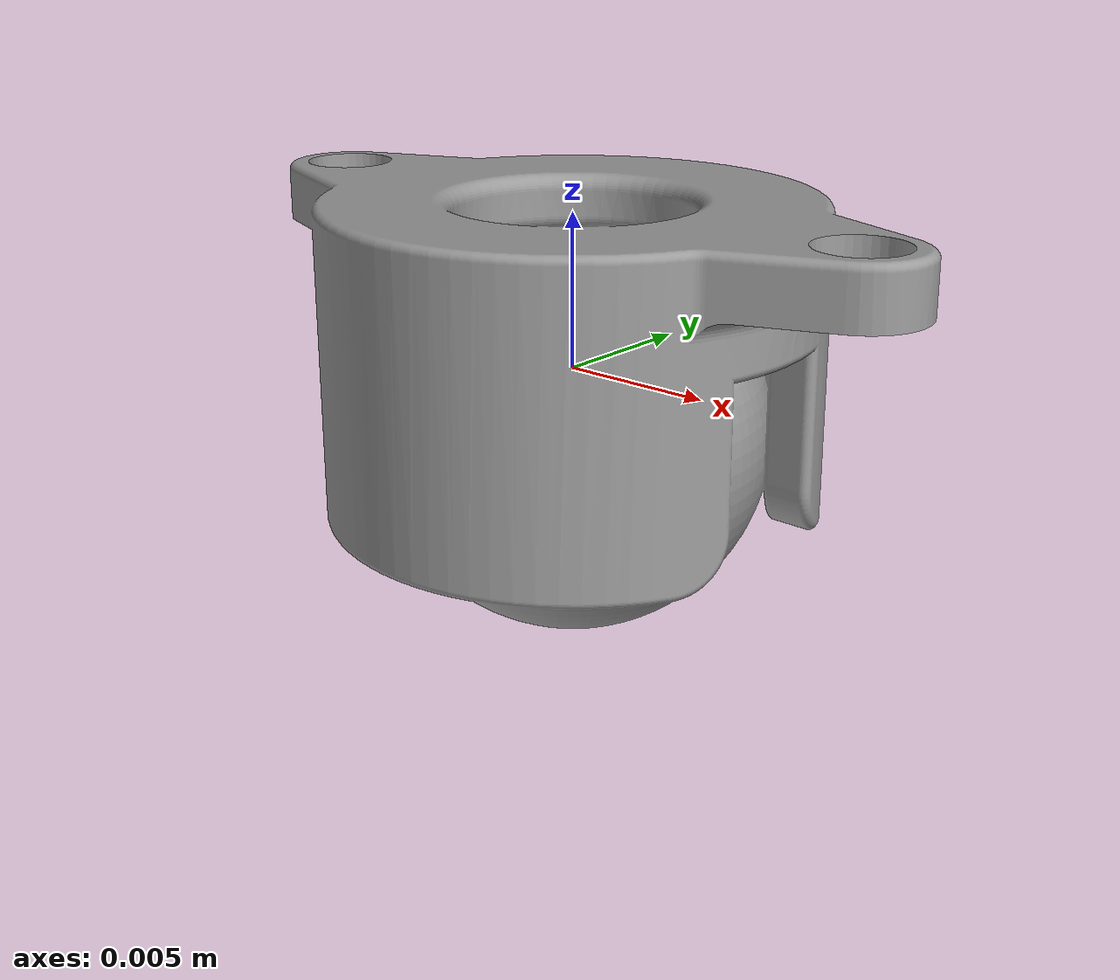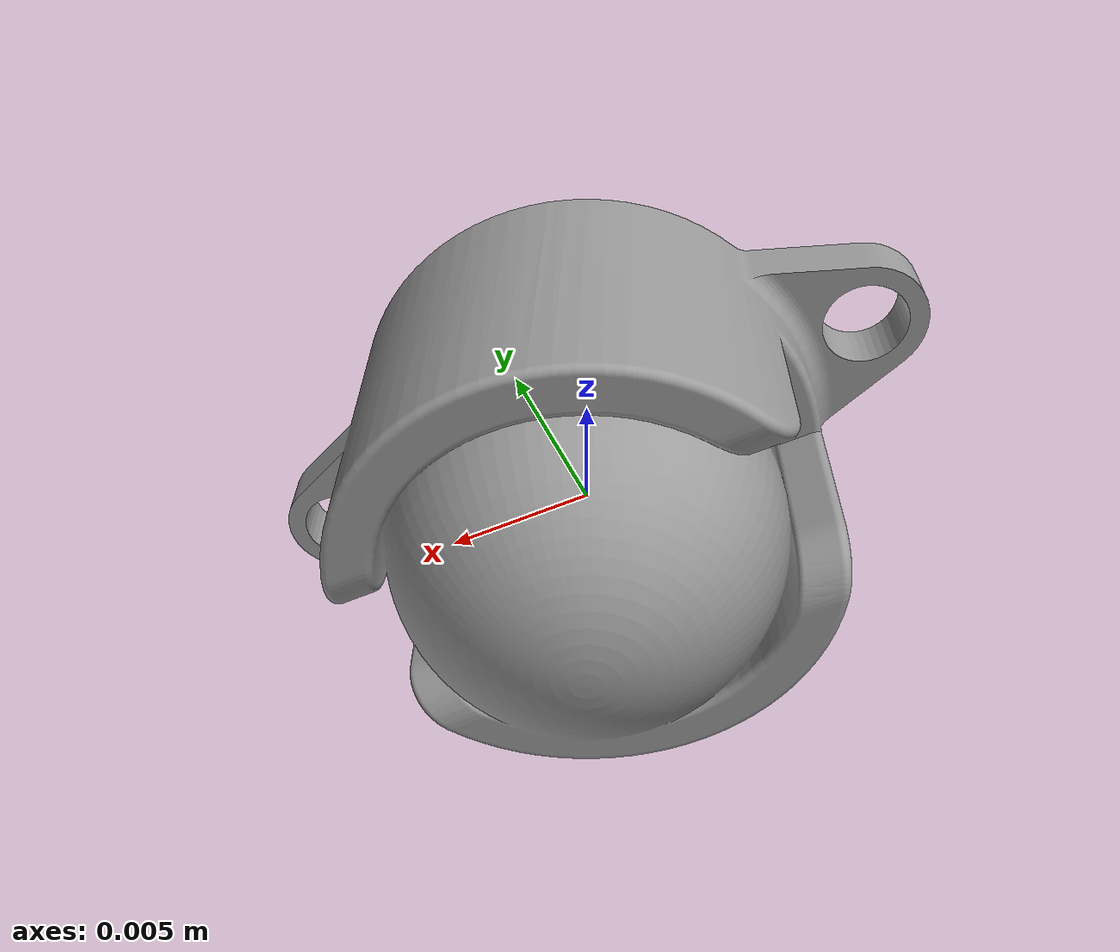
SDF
<?xml version="1.0" ?>
<sdf version="1.5">
  <model name="caster_wheel">
    <pose>0 0 0 0 0 0</pose>
    <link name="link">
      <!-- Physics -->
      <collision name="collision">
        <pose>0 0 0.0 0 0 0</pose>
        <geometry>
          <sphere>
            <radius>0.0057</radius>
          </sphere>
        </geometry>
      </collision>
      <inertial>
        <mass>0.1</mass>
        <pose>0 0 0 0 0 0</pose>
        <inertia>
          <ixx>1e-3</ixx>
          <ixy>0</ixy>
          <ixz>0</ixz>
          <iyy>1e-3</iyy>
          <iyz>0</iyz>
          <izz>1e-3</izz>
        </inertia>
      </inertial>
      <visual name="visual">
        <pose>0.0 0 0.0 0 0 0</pose>
        <geometry>
          <mesh>
            <uri>model://caster_wheel/meshes/caster_wheel.dae</uri>
            <scale>0.001 0.001 0.001</scale>
          </mesh>
        </geometry>
        <material>
          <script>
            <name>Gazebo/Grey</name>
          </script>
        </material>
      </visual>
    </link>
  </model>
</sdf>
